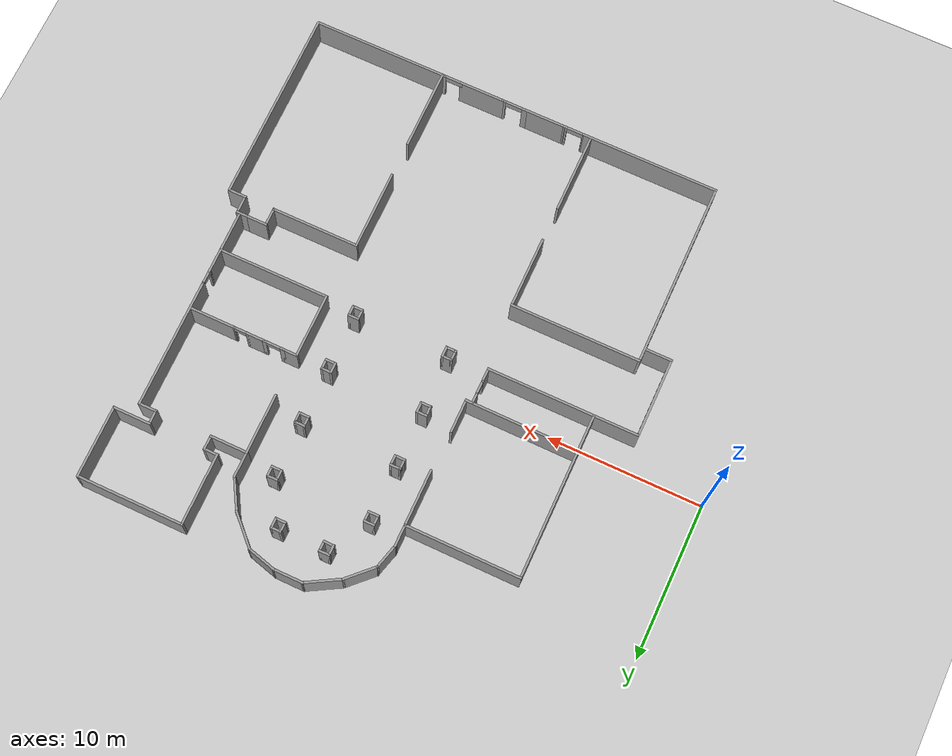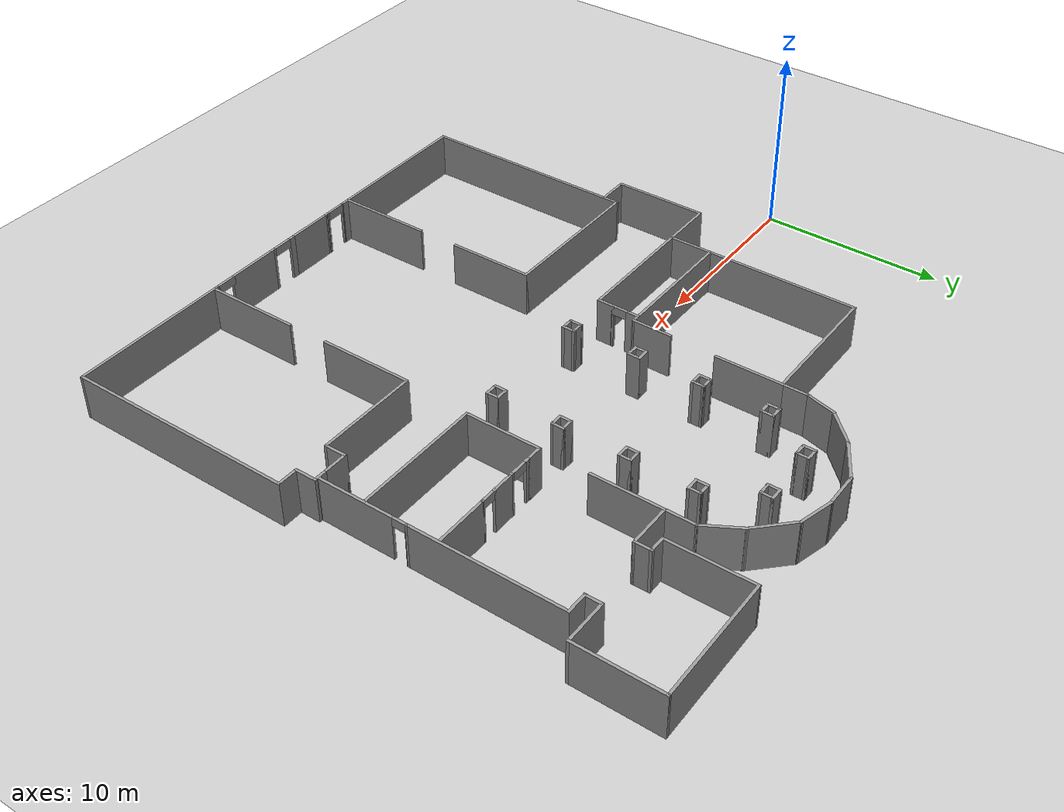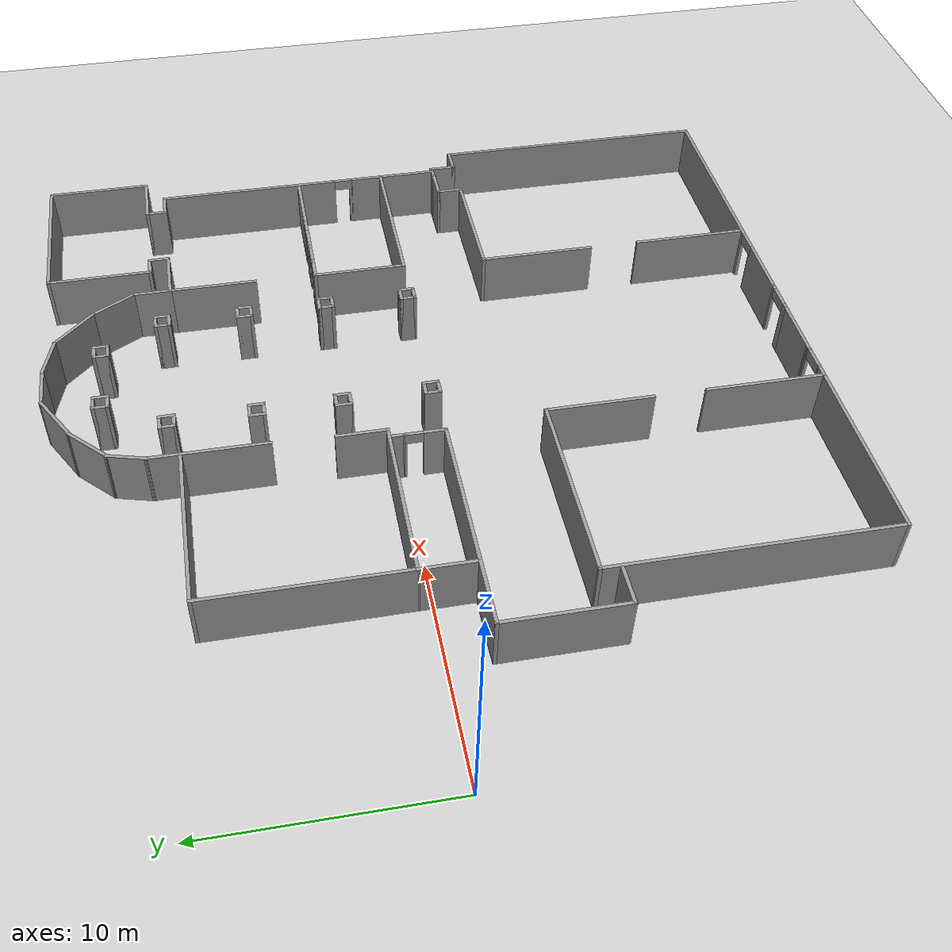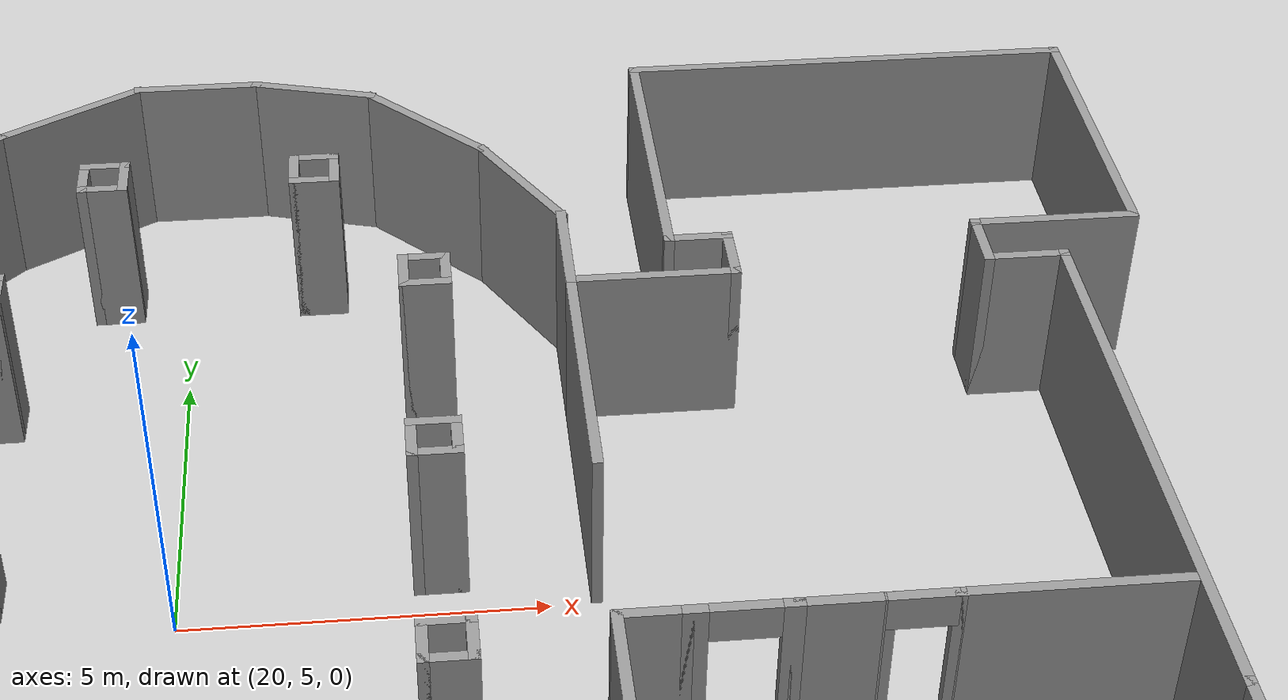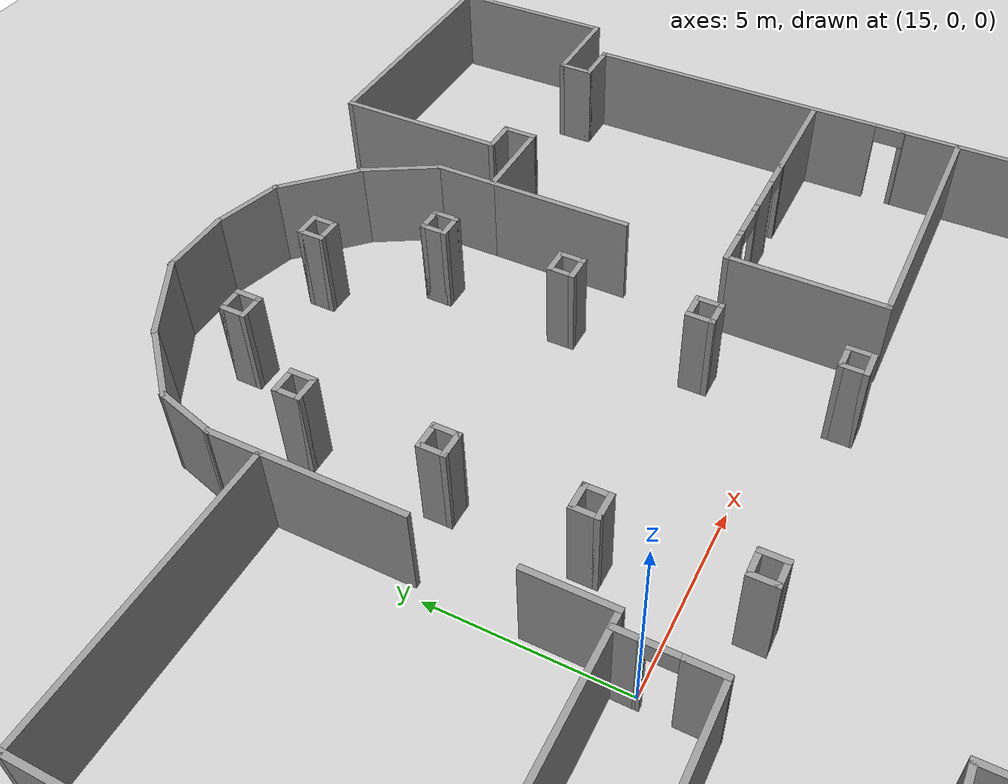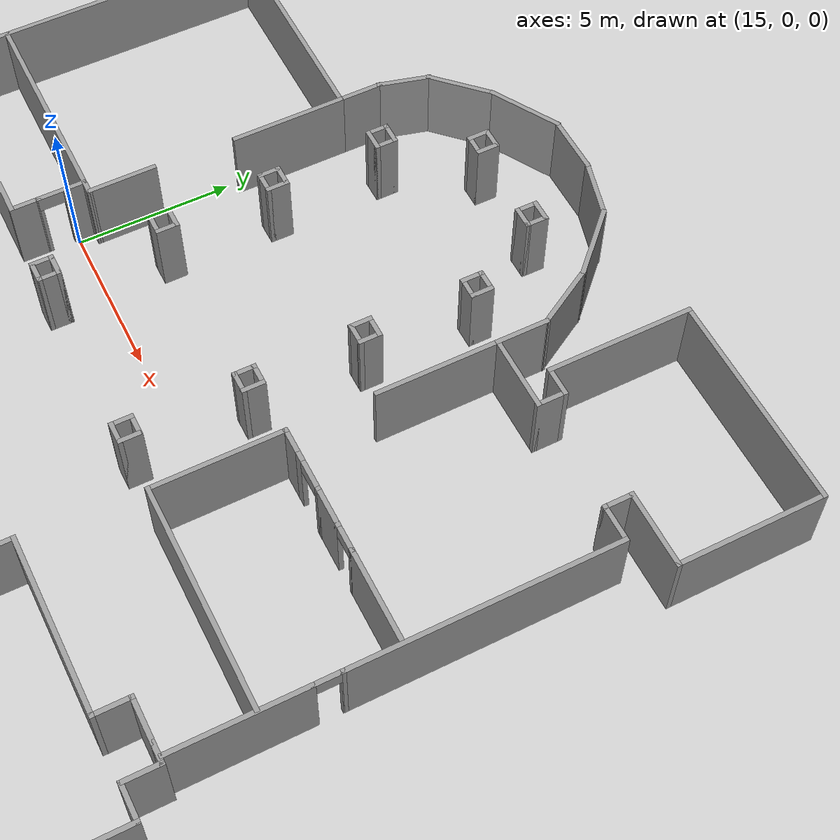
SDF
<?xml version="1.0" ?>
<sdf version="1.4">
  <world name="default">
    <include>
      <uri>model://ground_plane</uri>
    </include>
    <include>
      <uri>model://sun</uri>
    </include>
    <include>
      <uri>model://museum</uri>
    </include>
  </world>
</sdf>
